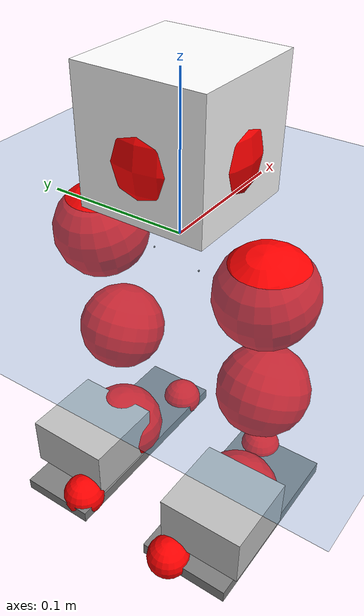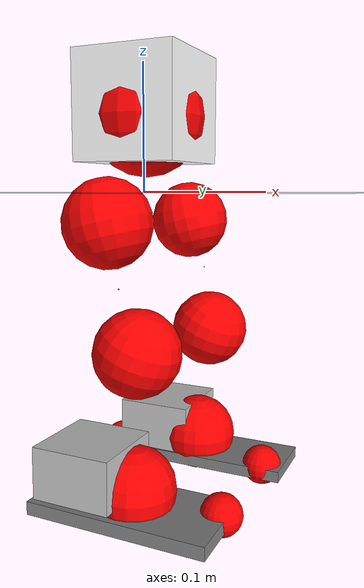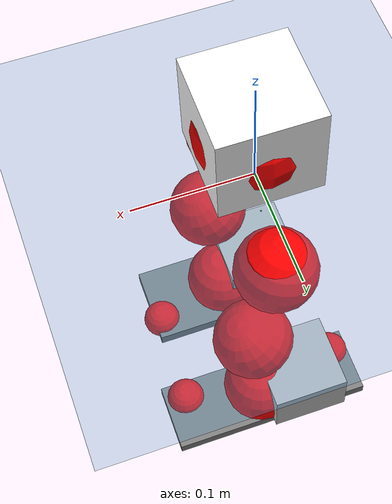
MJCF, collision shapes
<mujoco model="pi_12dof_release_v1">
  <compiler angle="radian" assetdir="assets" balanceinertia="true" inertiafromgeom="false"/>

  <option timestep="0.005" density="1.2" viscosity="2e-05"/>

  <size nkey="1"/>

  <visual>
    <quality shadowsize="8192"/>
    <map shadowclip="0.5"/>
  </visual>

  <default>
    <default class="/">
      <joint armature="0.01" damping="0.01" frictionloss="0.01"/>
      <geom contype="0" conaffinity="0" group="1" solref="-1000 -80"/>
      <site size="0.01 0.005 0.005" group="5"/>
      <general forcelimited="true" biastype="affine" gainprm="20" biasprm="0 -20 -0.5"/>
      <default class="foot">
        <geom size="0.0845 0.036 0.005" type="box" condim="6" group="4" priority="1" friction="0.9 0.2 0.2" solimp="0.015 1 0.005"/>
      </default>
      <default class="reward_collision_sphere">
        <geom group="5" rgba="1 0 0 1"/>
      </default>
    </default>
  </default>

  <asset>
    <texture type="skybox" colorspace="auto" name="//unnamed_texture_0" builtin="gradient" rgb1="0.95 0.95 0.95" rgb2="0.95 0.95 0.95" width="100" height="600"/>
    <texture type="2d" colorspace="auto" name="texplane" builtin="checker" rgb1="0.345 0.575 0.748" rgb2="0.345 0.575 0.748" markrgb="1 1 1" width="512" height="512"/>
    <material name="MatPlane" class="/" texture="texplane" texuniform="true" texrepeat="2 2" specular="0.9"/>
    <mesh name="baselink_1" class="/" file="baselink_1.STL"/>
    <mesh name="r_hip_pitch_link" class="/" file="r_hip_pitch_link.STL"/>
    <mesh name="r_hip_roll_link" class="/" file="r_hip_roll_link.STL"/>
    <mesh name="r_thigh_link" class="/" file="r_thigh_link.STL"/>
    <mesh name="r_calf_link" class="/" file="r_calf_link.STL"/>
    <mesh name="r_ankle_pitch_link" class="/" file="r_ankle_pitch_link.STL"/>
    <mesh name="r_ankle_roll_link" class="/" file="r_ankle_roll_link.STL"/>
    <mesh name="l_hip_pitch_link" class="/" file="l_hip_pitch_link.STL"/>
    <mesh name="l_hip_roll_link" class="/" file="l_hip_roll_link.STL"/>
    <mesh name="l_thigh_link" class="/" file="l_thigh_link.STL"/>
    <mesh name="l_calf_link" class="/" file="l_calf_link.STL"/>
    <mesh name="l_ankle_pitch_link" class="/" file="l_ankle_pitch_link.STL"/>
    <mesh name="l_ankle_roll_link" class="/" file="l_ankle_roll_link.STL"/>
  </asset>

  <worldbody>
    <geom name="floor" class="/" size="100 100 0.125" type="plane" group="0" material="MatPlane"/>
    <light name="toplight_shadow" class="/" pos="0 0 5" dir="0.0990148 0.0990148 -0.990148" type="directional" ambient="0.04 0.04 0.04" diffuse="0.55 0.55 0.55" specular="0.12 0.12 0.12"/>
    <light name="toplight_fill" class="/" pos="0 0 5" dir="0.0990148 0.0990148 -0.990148" type="directional" castshadow="false" ambient="0.04 0.04 0.04" diffuse="0.3 0.3 0.3" specular="0.08 0.08 0.08"/>
    <body name="trunk" pos="0.0021108 0.000210128 0.00800995" quat="0.999994 0.00155509 0.00249055 -0.0019247">
      <inertial pos="0.0063601 -0.00563987 0.0301717" quat="0.686089 -0.0207417 0.00477881 0.727206" mass="1.16918" diaginertia="0.00957304 0.00214408 0.000651641"/>
      <joint name="//unnamed_joint_0" type="free"/>
      <geom name="//unnamed_geom_1" class="/" type="mesh" density="0" rgba="1 1 1 1" mesh="baselink_1"/>
      <geom name="//unnamed_geom_2" class="/" size="0.0416413 0.0416413 0.0416413" pos="0 0 0.0562458" type="box" rgba="1 1 1 1"/>
      <geom name="//unnamed_geom_3" class="reward_collision_sphere" size="0.0458054" pos="0 0 0.0492151"/>
      <site name="imu" class="/" pos="0.00862357 -0.0118753 0.0235431" size="0.00832825"/>
      <camera name="track" class="/" pos="0 -1.54202 0" quat="0.707107 0.707107 0 0" mode="trackcom"/>
      <camera name="ego_camera" class="/" pos="0.0768294 0 0.126553" quat="-0.5 -0.5 0.5 0.5"/>
      <body name="r_hip_pitch_link" pos="-0.00575816 -0.0172292 -0.0265602" quat="0.992196 7.6023e-05 -0.124687 -4.81135e-05">
        <inertial pos="0.00749797 -0.0461818 0.00751455" quat="-0.00399611 0.729281 -0.0401343 0.683025" mass="0.221556" diaginertia="0.000119353 2.71814e-05 1.46618e-05"/>
        <joint name="r_hip_pitch_joint" class="/" pos="0 0 0" axis="0.00358607 -0.999991 0.00208269" stiffness="0.00868266" range="-1.70594 1.22547" armature="0.00823579" damping="0.0308882" frictionloss="0.0091313"/>
        <geom name="//unnamed_geom_4" class="/" type="mesh" density="0" rgba="0.75294 0.75294 0.75294 1" mesh="r_hip_pitch_link"/>
        <geom name="//unnamed_geom_5" class="/" size="0.000416413 0.000416413 0.000416413" type="box" rgba="0.75294 0.75294 0.75294 1"/>
        <body name="r_hip_roll_link" pos="0.00510934 -0.0442158 -0.00486987" quat="0.999999 -0.000754055 -0.000105378 -0.000757582">
          <inertial pos="0.0040816 -0.000668083 -0.0481361" quat="0.704655 -0.0775754 -0.0821725 0.700493" mass="0.245253" diaginertia="0.000413196 8.16214e-05 2.52077e-05"/>
          <joint name="r_hip_roll_joint" class="/" pos="0 0 0" axis="-0.999793 0.0203333 -0.000752907" stiffness="0.00534901" range="-0.127551 0.476447" armature="0.0119659" damping="0.0115035" frictionloss="0.0072285"/>
          <geom name="//unnamed_geom_6" class="/" type="mesh" density="0" rgba="0.75294 0.75294 0.75294 1" mesh="r_hip_roll_link"/>
          <geom name="//unnamed_geom_7" class="/" size="0.000416413 0.000416413 0.000416413" type="box" rgba="0.75294 0.75294 0.75294 1"/>
          <geom name="//unnamed_geom_8" class="reward_collision_sphere" size="0.033313"/>
          <body name="r_thigh_link" pos="-0.0051551 0.00270079 -0.0477353" quat="1 -0.000787672 0.000375354 -7.83391e-05">
            <inertial pos="0.00941546 0.00831163 -0.036065" quat="0.74324 0.669018 0.000169472 0.00295345" mass="0.0641901" diaginertia="0.000149669 2.59276e-05 9.70403e-06"/>
            <joint name="r_thigh_joint" class="/" pos="0 0 0" axis="0.00342264 0.00271368 -0.99999" range="-0.273075 0.48043" armature="0.011467" damping="0" frictionloss="0.00754244"/>
            <geom name="//unnamed_geom_9" class="/" type="mesh" density="0" rgba="0.75294 0.75294 0.75294 1" mesh="r_thigh_link"/>
            <geom name="//unnamed_geom_10" class="/" size="0.000416413 0.000416413 0.000416413" type="box" rgba="0.75294 0.75294 0.75294 1"/>
            <body name="r_calf_link" pos="0.00175002 0.00250569 -0.0489702" quat="0.947265 -0.00317178 0.320425 0.00250341">
              <inertial pos="-0.000312927 -0.000490528 -0.0488839" quat="0.999162 -0.0108893 -0.0391862 -0.0045154" mass="0.418644" diaginertia="0.00403349 0.000931265 3.05327e-05"/>
              <joint name="r_calf_joint" class="/" pos="0 0 0" axis="0.00700154 -0.999964 0.00483683" range="-1.6592 0.612518" armature="0.00829374" damping="0.0150632" frictionloss="0.00921822"/>
              <geom name="//unnamed_geom_11" class="/" type="mesh" density="0" rgba="0.75294 0.75294 0.75294 1" mesh="r_calf_link"/>
              <geom name="//unnamed_geom_12" class="/" size="0.000416413 0.000416413 0.000416413" type="box" rgba="0.75294 0.75294 0.75294 1"/>
              <geom name="//unnamed_geom_13" class="reward_collision_sphere" size="0.033313"/>
              <body name="r_ankle_pitch_link" pos="-0.00103142 0.00314174 -0.103423" quat="0.980066 1.40504e-05 -0.198671 0.000346726">
                <inertial pos="0.00586028 0.00269021 -0.000614504" quat="0.00504638 0.704755 -0.00168413 0.709431" mass="0.0966796" diaginertia="0.000357634 6.48335e-05 2.055e-05"/>
                <joint name="r_ankle_pitch_joint" class="/" pos="0 0 0" axis="-0.00641246 -0.999887 -0.0135639" stiffness="0.00373918" range="-1.25937 0.508328" armature="0.00840592" damping="0" frictionloss="0.00914239"/>
                <geom name="//unnamed_geom_14" class="/" type="mesh" density="0" rgba="0.75294 0.75294 0.75294 1" mesh="r_ankle_pitch_link"/>
                <geom name="//unnamed_geom_15" class="/" size="0.0324802 0.033313 0.0208206" type="box" rgba="0.75294 0.75294 0.75294 1"/>
                <body name="r_ankle_roll_link" pos="0.0846323 0.00687205 -0.00151378" quat="1 -0.000199428 -7.81836e-05 -0.000759796">
                  <inertial pos="-0.0262402 0.00688091 -0.0153183" quat="0.565041 0.453101 0.39746 0.56343" mass="0.317202" diaginertia="0.00135027 0.000281757 5.47439e-05"/>
                  <joint name="r_ankle_roll_joint" class="/" pos="0 0 0" axis="-0.999919 0.0127335 -0.00063817" range="0.0272524 0.104118" armature="0.0108501" damping="0.00279188" frictionloss="0.0113021"/>
                  <geom name="//unnamed_geom_16" class="/" type="mesh" density="0" rgba="0.75294 0.75294 0.75294 1" mesh="r_ankle_roll_link"/>
                  <geom name="//unnamed_geom_17" class="/" type="mesh" rgba="0.75294 0.75294 0.75294 1" mesh="r_ankle_roll_link"/>
                  <geom name="right_foot" class="foot" size="0.0745915 0.0360118 0.00535752" pos="-0.052244 0 -0.0309352"/>
                  <geom name="//unnamed_geom_19" class="reward_collision_sphere" size="0.033313" pos="-0.0512196 0 -0.0140614"/>
                  <geom name="//unnamed_geom_20" class="reward_collision_sphere" size="0.0166565" pos="0.0153659 0.0154202 -0.0281229"/>
                  <geom name="//unnamed_geom_21" class="reward_collision_sphere" size="0.0166565" pos="-0.122927 0.0154202 -0.0281229"/>
                  <site name="right_foot" class="foot" pos="-0.052244 0 -0.0309352" size="0.00832825"/>
                </body>
              </body>
            </body>
          </body>
        </body>
      </body>
      <body name="l_hip_pitch_link" pos="0.000979983 0.0215542 -0.0268056" quat="0.992184 0.000107953 -0.124783 -9.91646e-05">
        <inertial pos="0.000200515 0.0484144 0.00784261" quat="-0.0387859 0.705666 0.0310828 0.706799" mass="0.22538" diaginertia="0.000151398 2.93218e-05 1.8822e-05"/>
        <joint name="l_hip_pitch_joint" class="/" pos="0 0 0" axis="0.0231582 0.999574 0.017737" stiffness="0.0175426" range="-1.09027 1.78701" armature="0.00836435" damping="0.0253004" frictionloss="0.00758723"/>
        <geom name="//unnamed_geom_22" class="/" type="mesh" density="0" rgba="0.75294 0.75294 0.75294 1" mesh="l_hip_pitch_link"/>
        <geom name="//unnamed_geom_23" class="/" size="0.000416413 0.000416413 0.000416413" type="box" rgba="0.75294 0.75294 0.75294 1"/>
        <body name="l_hip_roll_link" pos="0.00418026 0.0494849 -0.00745899" quat="0.999998 -0.000169649 -0.00059776 -0.0020353">
          <inertial pos="-0.0105896 0.00424305 -0.0342961" quat="0.699334 -0.0748144 -0.0776509 0.706616" mass="0.193858" diaginertia="0.000303211 6.86137e-05 1.866e-05"/>
          <joint name="l_hip_roll_joint" class="/" pos="0 0 0" axis="-0.999947 0.00770526 -0.0067934" range="-0.494726 0.161511" armature="0.00979629" damping="0" frictionloss="0.00829376"/>
          <geom name="//unnamed_geom_24" class="/" type="mesh" density="0" rgba="0.75294 0.75294 0.75294 1" mesh="l_hip_roll_link"/>
          <geom name="//unnamed_geom_25" class="/" size="0.000416413 0.000416413 0.000416413" type="box" rgba="0.75294 0.75294 0.75294 1"/>
          <geom name="//unnamed_geom_26" class="reward_collision_sphere" size="0.033313"/>
          <body name="l_thigh_link" pos="0.00360498 -0.000102211 -0.0440616" quat="0.999997 0.00229779 0.000481939 -0.00043752">
            <inertial pos="0.00781156 -0.00455524 -0.0253426" quat="0.652507 0.757684 0.00542422 -0.0109788" mass="0.0698699" diaginertia="0.000146632 2.75825e-05 1.03392e-05"/>
            <joint name="l_thigh_joint" class="/" pos="0 0 0" axis="0.00439373 -0.00469053 -0.999979" range="-0.641117 0.243856" armature="0.00809685" damping="0" frictionloss="0.00482895"/>
            <geom name="//unnamed_geom_27" class="/" type="mesh" density="0" rgba="0.75294 0.75294 0.75294 1" mesh="l_thigh_link"/>
            <geom name="//unnamed_geom_28" class="/" size="0.000416413 0.000416413 0.000416413" type="box" rgba="0.75294 0.75294 0.75294 1"/>
            <body name="l_calf_link" pos="-0.00905523 0.00208624 -0.0555" quat="0.947626 0.000580609 0.319381 -0.000276698">
              <inertial pos="0.00535313 0.0052959 -0.0534876" quat="0.999449 -0.017983 0.025459 0.0114022" mass="0.471656" diaginertia="0.00324722 0.000872169 2.63696e-05"/>
              <joint name="l_calf_joint" class="/" pos="0 0 0" axis="0.00367778 0.999967 -0.00727259" stiffness="0.0247743" range="-0.530406 1.51451" armature="0.00876143" damping="0.0196338" frictionloss="0.0070449"/>
              <geom name="//unnamed_geom_29" class="/" type="mesh" density="0" rgba="0.75294 0.75294 0.75294 1" mesh="l_calf_link"/>
              <geom name="//unnamed_geom_30" class="/" size="0.000416413 0.000416413 0.000416413" type="box" rgba="0.75294 0.75294 0.75294 1"/>
              <geom name="//unnamed_geom_31" class="reward_collision_sphere" size="0.033313"/>
              <body name="l_ankle_pitch_link" pos="-0.00350354 0.000875438 -0.099047" quat="0.980201 -0.000453302 -0.198003 0.00102764">
                <inertial pos="0.0043098 0.00105875 0.00624442" quat="0.000964557 0.697584 -0.00651934 0.716473" mass="0.111714" diaginertia="0.000319496 5.94573e-05 2.07766e-05"/>
                <joint name="l_ankle_pitch_joint" class="/" pos="0 0 0" axis="0.00280197 0.999996 -0.00049448" range="-0.443265 1.35532" armature="0.00871978" damping="0.0489985" frictionloss="0.010341"/>
                <geom name="//unnamed_geom_32" class="/" type="mesh" density="0" rgba="0.75294 0.75294 0.75294 1" mesh="l_ankle_pitch_link"/>
                <geom name="//unnamed_geom_33" class="/" size="0.0324802 0.033313 0.0208206" type="box" rgba="0.75294 0.75294 0.75294 1"/>
                <body name="l_ankle_roll_link" pos="0.0841259 -0.00445335 0.00513643" quat="0.999989 -0.00416242 -0.00130918 0.00148872">
                  <inertial pos="-0.0254895 -0.00036456 -0.0123485" quat="0.540321 0.451653 0.421444 0.571357" mass="0.283628" diaginertia="0.00120487 0.000265742 5.12298e-05"/>
                  <joint name="l_ankle_roll_joint" class="/" pos="0 0 0" axis="-1 -0.000175363 -0.000269243" range="-0.122975 0.332585" armature="0.00850081" damping="0.0235152" frictionloss="0.00890085"/>
                  <geom name="//unnamed_geom_34" class="/" type="mesh" density="0" rgba="0.75294 0.75294 0.75294 1" mesh="l_ankle_roll_link"/>
                  <geom name="//unnamed_geom_35" class="/" type="mesh" rgba="0.75294 0.75294 0.75294 1" mesh="l_ankle_roll_link"/>
                  <geom name="left_foot" class="foot" size="0.0864435 0.0297002 0.00474977" pos="-0.052244 0 -0.0309352"/>
                  <geom name="//unnamed_geom_37" class="reward_collision_sphere" size="0.033313" pos="-0.0512196 0 -0.0140614"/>
                  <geom name="//unnamed_geom_38" class="reward_collision_sphere" size="0.0166565" pos="0.0153659 -0.0154202 -0.0281229"/>
                  <geom name="//unnamed_geom_39" class="reward_collision_sphere" size="0.0166565" pos="-0.122927 -0.0154202 -0.0281229"/>
                  <site name="left_foot" class="foot" pos="-0.052244 0 -0.0309352" size="0.00832825"/>
                </body>
              </body>
            </body>
          </body>
        </body>
      </body>
    </body>
  </worldbody>

  <contact>
    <pair class="/" geom1="floor" geom2="right_foot" name="//unnamed_contact_1"/>
    <pair class="/" geom1="floor" geom2="left_foot" name="//unnamed_contact_0"/>
  </contact>

  <actuator>
    <general name="r_hip_pitch_joint" class="/" joint="r_hip_pitch_joint" forcerange="-13.6364 13.6364" gainprm="20.4283" biasprm="0 -20.4283 -0.487267"/>
    <general name="r_hip_roll_joint" class="/" joint="r_hip_roll_joint" forcerange="-23.1506 23.1506" gainprm="20.4283" biasprm="0 -20.4283 -0.487267"/>
    <general name="r_thigh_joint" class="/" joint="r_thigh_joint" forcerange="-17.4518 17.4518" gainprm="20.4283" biasprm="0 -20.4283 -0.487267"/>
    <general name="r_calf_joint" class="/" joint="r_calf_joint" forcerange="-11.5287 11.5287" gainprm="20.4283" biasprm="0 -20.4283 -0.487267"/>
    <general name="r_ankle_pitch_joint" class="/" joint="r_ankle_pitch_joint" forcerange="-17.9914 17.9914" gainprm="20.4283" biasprm="0 -20.4283 -0.487267"/>
    <general name="r_ankle_roll_joint" class="/" joint="r_ankle_roll_joint" forcerange="-23.0447 23.0447" gainprm="20.4283" biasprm="0 -20.4283 -0.487267"/>
    <general name="l_hip_pitch_joint" class="/" joint="l_hip_pitch_joint" forcerange="-17.2655 17.2655" gainprm="20.4283" biasprm="0 -20.4283 -0.487267"/>
    <general name="l_hip_roll_joint" class="/" joint="l_hip_roll_joint" forcerange="-18.6708 18.6708" gainprm="20.4283" biasprm="0 -20.4283 -0.487267"/>
    <general name="l_thigh_joint" class="/" joint="l_thigh_joint" forcerange="-16.0415 16.0415" gainprm="20.4283" biasprm="0 -20.4283 -0.487267"/>
    <general name="l_calf_joint" class="/" joint="l_calf_joint" forcerange="-16.2543 16.2543" gainprm="20.4283" biasprm="0 -20.4283 -0.487267"/>
    <general name="l_ankle_pitch_joint" class="/" joint="l_ankle_pitch_joint" forcerange="-16.2042 16.2042" gainprm="20.4283" biasprm="0 -20.4283 -0.487267"/>
    <general name="l_ankle_roll_joint" class="/" joint="l_ankle_roll_joint" forcerange="-16.9147 16.9147" gainprm="20.4283" biasprm="0 -20.4283 -0.487267"/>
  </actuator>

  <sensor>
    <gyro site="imu" name="imu_angular_velocity"/>
    <velocimeter site="imu" name="imu_linear_velocity"/>
    <framelinvel objtype="site" objname="left_foot" name="left_foot_global_linear_velocity"/>
    <framelinvel objtype="site" objname="right_foot" name="right_foot_global_linear_velocity"/>
  </sensor>

  <keyframe>
    <key name="home" qpos="0 0 0.291 1 0 0 0 0.4 0 0 -0.8 0.4 0 -0.4 0 0 0.8 -0.4 0"/>
  </keyframe>
</mujoco>
